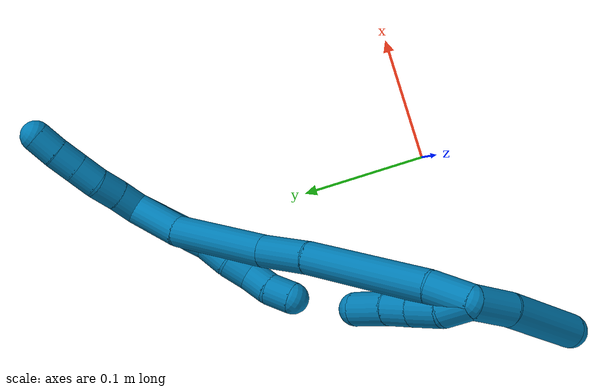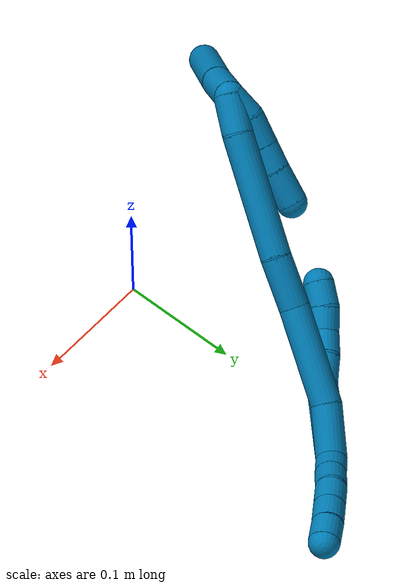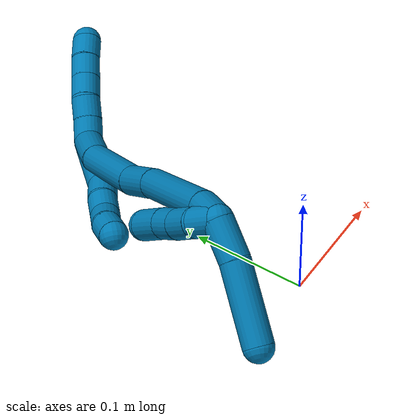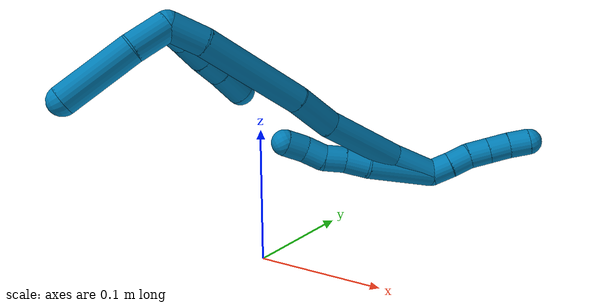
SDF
<sdf version="1.7">
 <world name="default">
  <model name="photoneo_s_sensor">
   <static>1</static>
   <pose>0 0 2 1.57079 1.57079 3.14159</pose>
   <link name="link">
    <inertial><mass>0.1</mass></inertial>
    <sensor name="sensor" type="depth">
     <update_rate>30</update_rate>
     <camera>
      <horizontal_fov>1.22</horizontal_fov>
      <image><width>1920</width><height>1200</height><format>B8G8R8</format></image>
      <clip><near>0.1</near><far>4</far></clip>
      <depth_camera><output>points</output></depth_camera>
     </camera>
     <plugin name="camera_plugin" filename="libgazebo_ros_depth_camera.so">
      <baseline>0.2</baseline>
      <alwaysOn>1</alwaysOn>
      <updateRate>0.0</updateRate>
      <cameraName>camera_ir</cameraName>
      <imageTopicName>/camera/color/image_raw</imageTopicName>
      <cameraInfoTopicName>/camera/color/camera_info</cameraInfoTopicName>
      <depthImageTopicName>/camera/depth/image_raw</depthImageTopicName>
      <depthImageCameraInfoTopicName>/camera/depth/camera_info</depthImageCameraInfoTopicName>
      <pointCloudTopicName>/camera/depth/points</pointCloudTopicName>
      <frameName>fr_optical</frameName>
      <pointCloudCutoff>0.1</pointCloudCutoff>
      <pointCloudCutoffMax>2.0</pointCloudCutoffMax>
      <distortionK1>0</distortionK1>
      <distortionK2>0</distortionK2>
      <distortionK3>0</distortionK3>
      <distortionT1>0</distortionT1>
      <distortionT2>0</distortionT2>
      <CxPrime>0</CxPrime>
      <Cx>0</Cx>
      <Cy>0</Cy>
      <focalLength>0</focalLength>
      <hackBaseline>0</hackBaseline>
     </plugin>
    </sensor>
   </link>
  </model>
  <model name="bin">
   <static>1</static>
   <link name="bottom">
    <collision name="collision-bottom">
     <pose>0 0 -0.01 0 -0 0</pose>
     <geometry><box><size>0.8 0.6 0.02</size></box></geometry>
     <surface>
      <friction><ode><mu>100</mu><mu2>100</mu2></ode></friction>
      <contact><collide_bitmask>65535</collide_bitmask></contact>
     </surface>
    </collision>
   </link>
   <link name="west_wall">
    <collision name="collision-west_wall">
     <pose>-0.41 0 0.1 0 -0 0</pose>
     <geometry><box><size>0.02 0.6 0.2</size></box></geometry>
     <surface>
      <friction><ode><mu>100</mu><mu2>100</mu2></ode></friction>
      <contact><collide_bitmask>65535</collide_bitmask></contact>
     </surface>
    </collision>
   </link>
   <link name="east_wall">
    <collision name="collision-east_wall">
     <pose>0.41 0 0.1 0 -0 0</pose>
     <geometry><box><size>0.02 0.6 0.2</size></box></geometry>
     <surface>
      <friction><ode><mu>100</mu><mu2>100</mu2></ode></friction>
      <contact><collide_bitmask>65535</collide_bitmask></contact>
     </surface>
    </collision>
   </link>
   <link name="south_wall">
    <collision name="collision-south_wall">
     <pose>0 -0.31 0.1 0 -0 0</pose>
     <geometry><box><size>0.8 0.02 0.2</size></box></geometry>
     <surface>
      <friction><ode><mu>100</mu><mu2>100</mu2></ode></friction>
      <contact><collide_bitmask>65535</collide_bitmask></contact>
     </surface>
    </collision>
   </link>
   <link name="north_wall">
    <collision name="collision-north_wall">
     <pose>0 0.31 0.1 0 -0 0</pose>
     <geometry><box><size>0.8 0.02 0.2</size></box></geometry>
     <surface>
      <friction><ode><mu>100</mu><mu2>100</mu2></ode></friction>
      <contact><collide_bitmask>65535</collide_bitmask></contact>
     </surface>
    </collision>
   </link>
  </model>
  <model name="9">
   <static>0</static>
   <link name="9">
    <collision name="collision-cylinder-e_1_2_8">
     <pose>-0.009072 -0.016664 0.026499 0.561375 -0.282074 -0.08182</pose>
     <geometry><cylinder><radius>0.0125</radius><length>0.065183</length></cylinder></geometry>
     <surface>
      <friction><ode><mu>1.16</mu><mu2>1.16</mu2><slip1>0</slip1><slip2>0</slip2></ode></friction>
      <contact><ode><kp>1e+06</kp><kd>1</kd><max_vel>0</max_vel><min_depth>0.001</min_depth></ode></contact>
     </surface>
    </collision>
    <visual name="visual-cylinder-e_1_2_8">
     <pose>-0.009072 -0.016664 0.026499 0.561375 -0.282074 -0.08182</pose>
     <geometry><cylinder><radius>0.0125</radius><length>0.065183</length></cylinder></geometry>
     <material><ambient>0 0.490196 0.709804 1</ambient></material>
    </visual>
    <collision name="collision-cylinder-e_2_8_9">
     <pose>-0.019577 -0.040743 0.061704 0.705414 -0.124715 -0.045959</pose>
     <geometry><cylinder><radius>0.0125</radius><length>0.023049</length></cylinder></geometry>
     <surface>
      <friction><ode><mu>1.16</mu><mu2>1.16</mu2><slip1>0</slip1><slip2>0</slip2></ode></friction>
      <contact><ode><kp>1e+06</kp><kd>1</kd><max_vel>0</max_vel><min_depth>0.001</min_depth></ode></contact>
     </surface>
    </collision>
    <visual name="visual-cylinder-e_2_8_9">
     <pose>-0.019577 -0.040743 0.061704 0.705414 -0.124715 -0.045959</pose>
     <geometry><cylinder><radius>0.0125</radius><length>0.023049</length></cylinder></geometry>
     <material><ambient>0 0.490196 0.709804 1</ambient></material>
    </visual>
    <collision name="collision-cylinder-e_3_9_10">
     <pose>-0.022895 -0.053289 0.079096 0.533686 -0.184676 -0.050617</pose>
     <geometry><cylinder><radius>0.0125</radius><length>0.020527</length></cylinder></geometry>
     <surface>
      <friction><ode><mu>1.16</mu><mu2>1.16</mu2><slip1>0</slip1><slip2>0</slip2></ode></friction>
      <contact><ode><kp>1e+06</kp><kd>1</kd><max_vel>0</max_vel><min_depth>0.001</min_depth></ode></contact>
     </surface>
    </collision>
    <visual name="visual-cylinder-e_3_9_10">
     <pose>-0.022895 -0.053289 0.079096 0.533686 -0.184676 -0.050617</pose>
     <geometry><cylinder><radius>0.0125</radius><length>0.020527</length></cylinder></geometry>
     <material><ambient>0 0.490196 0.709804 1</ambient></material>
    </visual>
    <collision name="collision-cylinder-e_4_10_11">
     <pose>-0.027415 -0.066056 0.094124 0.877639 -0.259523 -0.12234</pose>
     <geometry><cylinder><radius>0.0125</radius><length>0.020536</length></cylinder></geometry>
     <surface>
      <friction><ode><mu>1.16</mu><mu2>1.16</mu2><slip1>0</slip1><slip2>0</slip2></ode></friction>
      <contact><ode><kp>1e+06</kp><kd>1</kd><max_vel>0</max_vel><min_depth>0.001</min_depth></ode></contact>
     </surface>
    </collision>
    <visual name="visual-cylinder-e_4_10_11">
     <pose>-0.027415 -0.066056 0.094124 0.877639 -0.259523 -0.12234</pose>
     <geometry><cylinder><radius>0.0125</radius><length>0.020536</length></cylinder></geometry>
     <material><ambient>0 0.490196 0.709804 1</ambient></material>
    </visual>
    <collision name="collision-cylinder-e_5_11_6">
     <pose>-0.034569 -0.079887 0.107418 0.727951 -0.451697 -0.174615</pose>
     <geometry><cylinder><radius>0.0125</radius><length>0.020704</length></cylinder></geometry>
     <surface>
      <friction><ode><mu>1.16</mu><mu2>1.16</mu2><slip1>0</slip1><slip2>0</slip2></ode></friction>
      <contact><ode><kp>1e+06</kp><kd>1</kd><max_vel>0</max_vel><min_depth>0.001</min_depth></ode></contact>
     </surface>
    </collision>
    <visual name="visual-cylinder-e_5_11_6">
     <pose>-0.034569 -0.079887 0.107418 0.727951 -0.451697 -0.174615</pose>
     <geometry><cylinder><radius>0.0125</radius><length>0.020704</length></cylinder></geometry>
     <material><ambient>0 0.490196 0.709804 1</ambient></material>
    </visual>
    <collision name="collision-cylinder-e_1_2_12">
     <pose>-0.000994 0.000812 -0.009917 -3.05988 -0.099531 1.76705</pose>
     <geometry><cylinder><radius>0.0125</radius><length>0.02</length></cylinder></geometry>
     <surface>
      <friction><ode><mu>1.16</mu><mu2>1.16</mu2><slip1>0</slip1><slip2>0</slip2></ode></friction>
      <contact><ode><kp>1e+06</kp><kd>1</kd><max_vel>0</max_vel><min_depth>0.001</min_depth></ode></contact>
     </surface>
    </collision>
    <visual name="visual-cylinder-e_1_2_12">
     <pose>-0.000994 0.000812 -0.009917 -3.05988 -0.099531 1.76705</pose>
     <geometry><cylinder><radius>0.0125</radius><length>0.02</length></cylinder></geometry>
     <material><ambient>0 0.490196 0.709804 1</ambient></material>
    </visual>
    <collision name="collision-cylinder-e_2_12_13">
     <pose>-0.00264 0.001864 -0.02981 -3.11755 -0.065272 2.43601</pose>
     <geometry><cylinder><radius>0.0125</radius><length>0.02</length></cylinder></geometry>
     <surface>
      <friction><ode><mu>1.16</mu><mu2>1.16</mu2><slip1>0</slip1><slip2>0</slip2></ode></friction>
      <contact><ode><kp>1e+06</kp><kd>1</kd><max_vel>0</max_vel><min_depth>0.001</min_depth></ode></contact>
     </surface>
    </collision>
    <visual name="visual-cylinder-e_2_12_13">
     <pose>-0.00264 0.001864 -0.02981 -3.11755 -0.065272 2.43601</pose>
     <geometry><cylinder><radius>0.0125</radius><length>0.02</length></cylinder></geometry>
     <material><ambient>0 0.490196 0.709804 1</ambient></material>
    </visual>
    <collision name="collision-cylinder-e_3_13_14">
     <pose>-0.004016 0.004291 -0.049517 -2.92053 -0.072498 0.631635</pose>
     <geometry><cylinder><radius>0.0125</radius><length>0.02</length></cylinder></geometry>
     <surface>
      <friction><ode><mu>1.16</mu><mu2>1.16</mu2><slip1>0</slip1><slip2>0</slip2></ode></friction>
      <contact><ode><kp>1e+06</kp><kd>1</kd><max_vel>0</max_vel><min_depth>0.001</min_depth></ode></contact>
     </surface>
    </collision>
    <visual name="visual-cylinder-e_3_13_14">
     <pose>-0.004016 0.004291 -0.049517 -2.92053 -0.072498 0.631635</pose>
     <geometry><cylinder><radius>0.0125</radius><length>0.02</length></cylinder></geometry>
     <material><ambient>0 0.490196 0.709804 1</ambient></material>
    </visual>
    <collision name="collision-cylinder-e_4_14_15">
     <pose>-0.00547 0.008648 -0.068983 -2.92231 -0.073001 0.640584</pose>
     <geometry><cylinder><radius>0.0125</radius><length>0.02</length></cylinder></geometry>
     <surface>
      <friction><ode><mu>1.16</mu><mu2>1.16</mu2><slip1>0</slip1><slip2>0</slip2></ode></friction>
      <contact><ode><kp>1e+06</kp><kd>1</kd><max_vel>0</max_vel><min_depth>0.001</min_depth></ode></contact>
     </surface>
    </collision>
    <visual name="visual-cylinder-e_4_14_15">
     <pose>-0.00547 0.008648 -0.068983 -2.92231 -0.073001 0.640584</pose>
     <geometry><cylinder><radius>0.0125</radius><length>0.02</length></cylinder></geometry>
     <material><ambient>0 0.490196 0.709804 1</ambient></material>
    </visual>
    <collision name="collision-cylinder-e_5_15_5">
     <pose>-0.007253 0.013732 -0.088225 -2.84412 -0.105579 0.678031</pose>
     <geometry><cylinder><radius>0.0125</radius><length>0.02</length></cylinder></geometry>
     <surface>
      <friction><ode><mu>1.16</mu><mu2>1.16</mu2><slip1>0</slip1><slip2>0</slip2></ode></friction>
      <contact><ode><kp>1e+06</kp><kd>1</kd><max_vel>0</max_vel><min_depth>0.001</min_depth></ode></contact>
     </surface>
    </collision>
    <visual name="visual-cylinder-e_5_15_5">
     <pose>-0.007253 0.013732 -0.088225 -2.84412 -0.105579 0.678031</pose>
     <geometry><cylinder><radius>0.0125</radius><length>0.02</length></cylinder></geometry>
     <material><ambient>0 0.490196 0.709804 1</ambient></material>
    </visual>
    <collision name="collision-cylinder-e_1_2_16">
     <pose>-0.007719 -0.0151 0.013928 0.825753 -0.359418 -0.158827</pose>
     <geometry><cylinder><radius>0.0125</radius><length>0.043891</length></cylinder></geometry>
     <surface>
      <friction><ode><mu>1.16</mu><mu2>1.16</mu2><slip1>0</slip1><slip2>0</slip2></ode></friction>
      <contact><ode><kp>1e+06</kp><kd>1</kd><max_vel>0</max_vel><min_depth>0.001</min_depth></ode></contact>
     </surface>
    </collision>
    <visual name="visual-cylinder-e_1_2_16">
     <pose>-0.007719 -0.0151 0.013928 0.825753 -0.359418 -0.158827</pose>
     <geometry><cylinder><radius>0.0125</radius><length>0.043891</length></cylinder></geometry>
     <material><ambient>0 0.490196 0.709804 1</ambient></material>
    </visual>
    <collision name="collision-cylinder-e_2_16_17">
     <pose>-0.038402 -0.054938 0.049844 0.844189 -0.606586 -0.279253</pose>
     <geometry><cylinder><radius>0.0125</radius><length>0.080567</length></cylinder></geometry>
     <surface>
      <friction><ode><mu>1.16</mu><mu2>1.16</mu2><slip1>0</slip1><slip2>0</slip2></ode></friction>
      <contact><ode><kp>1e+06</kp><kd>1</kd><max_vel>0</max_vel><min_depth>0.001</min_depth></ode></contact>
     </surface>
    </collision>
    <visual name="visual-cylinder-e_2_16_17">
     <pose>-0.038402 -0.054938 0.049844 0.844189 -0.606586 -0.279253</pose>
     <geometry><cylinder><radius>0.0125</radius><length>0.080567</length></cylinder></geometry>
     <material><ambient>0 0.490196 0.709804 1</ambient></material>
    </visual>
    <collision name="collision-cylinder-e_3_17_18">
     <pose>-0.074871 -0.093665 0.080351 1.02376 -0.689537 -0.398175</pose>
     <geometry><cylinder><radius>0.0125</radius><length>0.042458</length></cylinder></geometry>
     <surface>
      <friction><ode><mu>1.16</mu><mu2>1.16</mu2><slip1>0</slip1><slip2>0</slip2></ode></friction>
      <contact><ode><kp>1e+06</kp><kd>1</kd><max_vel>0</max_vel><min_depth>0.001</min_depth></ode></contact>
     </surface>
    </collision>
    <visual name="visual-cylinder-e_3_17_18">
     <pose>-0.074871 -0.093665 0.080351 1.02376 -0.689537 -0.398175</pose>
     <geometry><cylinder><radius>0.0125</radius><length>0.042458</length></cylinder></geometry>
     <material><ambient>0 0.490196 0.709804 1</ambient></material>
    </visual>
    <collision name="collision-cylinder-e_4_18_19">
     <pose>-0.11738 -0.140666 0.113788 0.924235 -0.611545 -0.311912</pose>
     <geometry><cylinder><radius>0.0125</radius><length>0.101033</length></cylinder></geometry>
     <surface>
      <friction><ode><mu>1.16</mu><mu2>1.16</mu2><slip1>0</slip1><slip2>0</slip2></ode></friction>
      <contact><ode><kp>1e+06</kp><kd>1</kd><max_vel>0</max_vel><min_depth>0.001</min_depth></ode></contact>
     </surface>
    </collision>
    <visual name="visual-cylinder-e_4_18_19">
     <pose>-0.11738 -0.140666 0.113788 0.924235 -0.611545 -0.311912</pose>
     <geometry><cylinder><radius>0.0125</radius><length>0.101033</length></cylinder></geometry>
     <material><ambient>0 0.490196 0.709804 1</ambient></material>
    </visual>
    <collision name="collision-cylinder-e_5_19_1">
     <pose>-0.153929 -0.183874 0.148501 0.805443 -0.490258 -0.212337</pose>
     <geometry><cylinder><radius>0.0125</radius><length>0.032052</length></cylinder></geometry>
     <surface>
      <friction><ode><mu>1.16</mu><mu2>1.16</mu2><slip1>0</slip1><slip2>0</slip2></ode></friction>
      <contact><ode><kp>1e+06</kp><kd>1</kd><max_vel>0</max_vel><min_depth>0.001</min_depth></ode></contact>
     </surface>
    </collision>
    <visual name="visual-cylinder-e_5_19_1">
     <pose>-0.153929 -0.183874 0.148501 0.805443 -0.490258 -0.212337</pose>
     <geometry><cylinder><radius>0.0125</radius><length>0.032052</length></cylinder></geometry>
     <material><ambient>0 0.490196 0.709804 1</ambient></material>
    </visual>
    <collision name="collision-cylinder-e_1_1_20">
     <pose>-0.151093 -0.189463 0.155545 -2.10913 1.09373 -1.64086</pose>
     <geometry><cylinder><radius>0.0125</radius><length>0.023373</length></cylinder></geometry>
     <surface>
      <friction><ode><mu>1.16</mu><mu2>1.16</mu2><slip1>0</slip1><slip2>0</slip2></ode></friction>
      <contact><ode><kp>1e+06</kp><kd>1</kd><max_vel>0</max_vel><min_depth>0.001</min_depth></ode></contact>
     </surface>
    </collision>
    <visual name="visual-cylinder-e_1_1_20">
     <pose>-0.151093 -0.189463 0.155545 -2.10913 1.09373 -1.64086</pose>
     <geometry><cylinder><radius>0.0125</radius><length>0.023373</length></cylinder></geometry>
     <material><ambient>0 0.490196 0.709804 1</ambient></material>
    </visual>
    <collision name="collision-cylinder-e_2_20_21">
     <pose>-0.131537 -0.176801 0.149204 -1.99004 0.805222 -1.16123</pose>
     <geometry><cylinder><radius>0.0125</radius><length>0.02545</length></cylinder></geometry>
     <surface>
      <friction><ode><mu>1.16</mu><mu2>1.16</mu2><slip1>0</slip1><slip2>0</slip2></ode></friction>
      <contact><ode><kp>1e+06</kp><kd>1</kd><max_vel>0</max_vel><min_depth>0.001</min_depth></ode></contact>
     </surface>
    </collision>
    <visual name="visual-cylinder-e_2_20_21">
     <pose>-0.131537 -0.176801 0.149204 -1.99004 0.805222 -1.16123</pose>
     <geometry><cylinder><radius>0.0125</radius><length>0.02545</length></cylinder></geometry>
     <material><ambient>0 0.490196 0.709804 1</ambient></material>
    </visual>
    <collision name="collision-cylinder-e_3_21_22">
     <pose>-0.114696 -0.162225 0.141843 -2.09513 0.794106 -1.25711</pose>
     <geometry><cylinder><radius>0.0125</radius><length>0.021497</length></cylinder></geometry>
     <surface>
      <friction><ode><mu>1.16</mu><mu2>1.16</mu2><slip1>0</slip1><slip2>0</slip2></ode></friction>
      <contact><ode><kp>1e+06</kp><kd>1</kd><max_vel>0</max_vel><min_depth>0.001</min_depth></ode></contact>
     </surface>
    </collision>
    <visual name="visual-cylinder-e_3_21_22">
     <pose>-0.114696 -0.162225 0.141843 -2.09513 0.794106 -1.25711</pose>
     <geometry><cylinder><radius>0.0125</radius><length>0.021497</length></cylinder></geometry>
     <material><ambient>0 0.490196 0.709804 1</ambient></material>
    </visual>
    <collision name="collision-cylinder-e_4_22_4">
     <pose>-0.09583 -0.146924 0.133864 -2.01768 0.855217 -1.25297</pose>
     <geometry><cylinder><radius>0.0125</radius><length>0.02968</length></cylinder></geometry>
     <surface>
      <friction><ode><mu>1.16</mu><mu2>1.16</mu2><slip1>0</slip1><slip2>0</slip2></ode></friction>
      <contact><ode><kp>1e+06</kp><kd>1</kd><max_vel>0</max_vel><min_depth>0.001</min_depth></ode></contact>
     </surface>
    </collision>
    <visual name="visual-cylinder-e_4_22_4">
     <pose>-0.09583 -0.146924 0.133864 -2.01768 0.855217 -1.25297</pose>
     <geometry><cylinder><radius>0.0125</radius><length>0.02968</length></cylinder></geometry>
     <material><ambient>0 0.490196 0.709804 1</ambient></material>
    </visual>
    <collision name="collision-cylinder-e_1_1_23">
     <pose>-0.164217 -0.191125 0.174682 -0.177811 -0.163256 0.014585</pose>
     <geometry><cylinder><radius>0.0125</radius><length>0.033746</length></cylinder></geometry>
     <surface>
      <friction><ode><mu>1.16</mu><mu2>1.16</mu2><slip1>0</slip1><slip2>0</slip2></ode></friction>
      <contact><ode><kp>1e+06</kp><kd>1</kd><max_vel>0</max_vel><min_depth>0.001</min_depth></ode></contact>
     </surface>
    </collision>
    <visual name="visual-cylinder-e_1_1_23">
     <pose>-0.164217 -0.191125 0.174682 -0.177811 -0.163256 0.014585</pose>
     <geometry><cylinder><radius>0.0125</radius><length>0.033746</length></cylinder></geometry>
     <material><ambient>0 0.490196 0.709804 1</ambient></material>
    </visual>
    <collision name="collision-cylinder-e_2_23_3">
     <pose>-0.167666 -0.181416 0.223489 -0.20571 -0.021322 0.002201</pose>
     <geometry><cylinder><radius>0.0125</radius><length>0.066254</length></cylinder></geometry>
     <surface>
      <friction><ode><mu>1.16</mu><mu2>1.16</mu2><slip1>0</slip1><slip2>0</slip2></ode></friction>
      <contact><ode><kp>1e+06</kp><kd>1</kd><max_vel>0</max_vel><min_depth>0.001</min_depth></ode></contact>
     </surface>
    </collision>
    <visual name="visual-cylinder-e_2_23_3">
     <pose>-0.167666 -0.181416 0.223489 -0.20571 -0.021322 0.002201</pose>
     <geometry><cylinder><radius>0.0125</radius><length>0.066254</length></cylinder></geometry>
     <material><ambient>0 0.490196 0.709804 1</ambient></material>
    </visual>
    <collision name="collision-sphere-3">
     <pose>-0.168372 -0.174651 0.255911 0 -0 0</pose>
     <geometry><sphere><radius>0.0125</radius></sphere></geometry>
     <surface>
      <friction><ode><mu>1.16</mu><mu2>1.16</mu2><slip1>0</slip1><slip2>0</slip2></ode></friction>
      <contact><ode><kp>1e+06</kp><kd>1</kd><max_vel>0</max_vel><min_depth>0.001</min_depth></ode></contact>
     </surface>
    </collision>
    <visual name="visual-sphere-3">
     <pose>-0.168372 -0.174651 0.255911 0 -0 0</pose>
     <geometry><sphere><radius>0.0125</radius></sphere></geometry>
     <material><ambient>0 0.490196 0.709804 1</ambient></material>
    </visual>
    <collision name="collision-sphere-23">
     <pose>-0.16696 -0.188181 0.191068 0 -0 0</pose>
     <geometry><sphere><radius>0.0125</radius></sphere></geometry>
     <surface>
      <friction><ode><mu>1.16</mu><mu2>1.16</mu2><slip1>0</slip1><slip2>0</slip2></ode></friction>
      <contact><ode><kp>1e+06</kp><kd>1</kd><max_vel>0</max_vel><min_depth>0.001</min_depth></ode></contact>
     </surface>
    </collision>
    <visual name="visual-sphere-23">
     <pose>-0.16696 -0.188181 0.191068 0 -0 0</pose>
     <geometry><sphere><radius>0.0125</radius></sphere></geometry>
     <material><ambient>0 0.490196 0.709804 1</ambient></material>
    </visual>
    <collision name="collision-sphere-4">
     <pose>-0.08463 -0.138144 0.129656 0 -0 0</pose>
     <geometry><sphere><radius>0.0125</radius></sphere></geometry>
     <surface>
      <friction><ode><mu>1.16</mu><mu2>1.16</mu2><slip1>0</slip1><slip2>0</slip2></ode></friction>
      <contact><ode><kp>1e+06</kp><kd>1</kd><max_vel>0</max_vel><min_depth>0.001</min_depth></ode></contact>
     </surface>
    </collision>
    <visual name="visual-sphere-4">
     <pose>-0.08463 -0.138144 0.129656 0 -0 0</pose>
     <geometry><sphere><radius>0.0125</radius></sphere></geometry>
     <material><ambient>0 0.490196 0.709804 1</ambient></material>
    </visual>
    <collision name="collision-sphere-22">
     <pose>-0.10703 -0.155704 0.138071 0 -0 0</pose>
     <geometry><sphere><radius>0.0125</radius></sphere></geometry>
     <surface>
      <friction><ode><mu>1.16</mu><mu2>1.16</mu2><slip1>0</slip1><slip2>0</slip2></ode></friction>
      <contact><ode><kp>1e+06</kp><kd>1</kd><max_vel>0</max_vel><min_depth>0.001</min_depth></ode></contact>
     </surface>
    </collision>
    <visual name="visual-sphere-22">
     <pose>-0.10703 -0.155704 0.138071 0 -0 0</pose>
     <geometry><sphere><radius>0.0125</radius></sphere></geometry>
     <material><ambient>0 0.490196 0.709804 1</ambient></material>
    </visual>
    <collision name="collision-sphere-21">
     <pose>-0.122362 -0.168747 0.145614 0 -0 0</pose>
     <geometry><sphere><radius>0.0125</radius></sphere></geometry>
     <surface>
      <friction><ode><mu>1.16</mu><mu2>1.16</mu2><slip1>0</slip1><slip2>0</slip2></ode></friction>
      <contact><ode><kp>1e+06</kp><kd>1</kd><max_vel>0</max_vel><min_depth>0.001</min_depth></ode></contact>
     </surface>
    </collision>
    <visual name="visual-sphere-21">
     <pose>-0.122362 -0.168747 0.145614 0 -0 0</pose>
     <geometry><sphere><radius>0.0125</radius></sphere></geometry>
     <material><ambient>0 0.490196 0.709804 1</ambient></material>
    </visual>
    <collision name="collision-sphere-20">
     <pose>-0.140711 -0.184856 0.152793 0 -0 0</pose>
     <geometry><sphere><radius>0.0125</radius></sphere></geometry>
     <surface>
      <friction><ode><mu>1.16</mu><mu2>1.16</mu2><slip1>0</slip1><slip2>0</slip2></ode></friction>
      <contact><ode><kp>1e+06</kp><kd>1</kd><max_vel>0</max_vel><min_depth>0.001</min_depth></ode></contact>
     </surface>
    </collision>
    <visual name="visual-sphere-20">
     <pose>-0.140711 -0.184856 0.152793 0 -0 0</pose>
     <geometry><sphere><radius>0.0125</radius></sphere></geometry>
     <material><ambient>0 0.490196 0.709804 1</ambient></material>
    </visual>
    <collision name="collision-sphere-6">
     <pose>-0.039087 -0.086084 0.114371 0 -0 0</pose>
     <geometry><sphere><radius>0.0125</radius></sphere></geometry>
     <surface>
      <friction><ode><mu>1.16</mu><mu2>1.16</mu2><slip1>0</slip1><slip2>0</slip2></ode></friction>
      <contact><ode><kp>1e+06</kp><kd>1</kd><max_vel>0</max_vel><min_depth>0.001</min_depth></ode></contact>
     </surface>
    </collision>
    <visual name="visual-sphere-6">
     <pose>-0.039087 -0.086084 0.114371 0 -0 0</pose>
     <geometry><sphere><radius>0.0125</radius></sphere></geometry>
     <material><ambient>0 0.490196 0.709804 1</ambient></material>
    </visual>
    <collision name="collision-sphere-11">
     <pose>-0.03005 -0.07369 0.100465 0 -0 0</pose>
     <geometry><sphere><radius>0.0125</radius></sphere></geometry>
     <surface>
      <friction><ode><mu>1.16</mu><mu2>1.16</mu2><slip1>0</slip1><slip2>0</slip2></ode></friction>
      <contact><ode><kp>1e+06</kp><kd>1</kd><max_vel>0</max_vel><min_depth>0.001</min_depth></ode></contact>
     </surface>
    </collision>
    <visual name="visual-sphere-11">
     <pose>-0.03005 -0.07369 0.100465 0 -0 0</pose>
     <geometry><sphere><radius>0.0125</radius></sphere></geometry>
     <material><ambient>0 0.490196 0.709804 1</ambient></material>
    </visual>
    <collision name="collision-sphere-10">
     <pose>-0.02478 -0.058421 0.087782 0 -0 0</pose>
     <geometry><sphere><radius>0.0125</radius></sphere></geometry>
     <surface>
      <friction><ode><mu>1.16</mu><mu2>1.16</mu2><slip1>0</slip1><slip2>0</slip2></ode></friction>
      <contact><ode><kp>1e+06</kp><kd>1</kd><max_vel>0</max_vel><min_depth>0.001</min_depth></ode></contact>
     </surface>
    </collision>
    <visual name="visual-sphere-10">
     <pose>-0.02478 -0.058421 0.087782 0 -0 0</pose>
     <geometry><sphere><radius>0.0125</radius></sphere></geometry>
     <material><ambient>0 0.490196 0.709804 1</ambient></material>
    </visual>
    <collision name="collision-sphere-9">
     <pose>-0.021011 -0.048157 0.07041 0 -0 0</pose>
     <geometry><sphere><radius>0.0125</radius></sphere></geometry>
     <surface>
      <friction><ode><mu>1.16</mu><mu2>1.16</mu2><slip1>0</slip1><slip2>0</slip2></ode></friction>
      <contact><ode><kp>1e+06</kp><kd>1</kd><max_vel>0</max_vel><min_depth>0.001</min_depth></ode></contact>
     </surface>
    </collision>
    <visual name="visual-sphere-9">
     <pose>-0.021011 -0.048157 0.07041 0 -0 0</pose>
     <geometry><sphere><radius>0.0125</radius></sphere></geometry>
     <material><ambient>0 0.490196 0.709804 1</ambient></material>
    </visual>
    <collision name="collision-sphere-2">
     <geometry><sphere><radius>0.0125</radius></sphere></geometry>
     <surface>
      <friction><ode><mu>1.16</mu><mu2>1.16</mu2><slip1>0</slip1><slip2>0</slip2></ode></friction>
      <contact><ode><kp>1e+06</kp><kd>1</kd><max_vel>0</max_vel><min_depth>0.001</min_depth></ode></contact>
     </surface>
    </collision>
    <visual name="visual-sphere-2">
     <geometry><sphere><radius>0.0125</radius></sphere></geometry>
     <material><ambient>0 0.490196 0.709804 1</ambient></material>
    </visual>
    <collision name="collision-sphere-19">
     <pose>-0.146383 -0.173679 0.138706 0 -0 0</pose>
     <geometry><sphere><radius>0.0125</radius></sphere></geometry>
     <surface>
      <friction><ode><mu>1.16</mu><mu2>1.16</mu2><slip1>0</slip1><slip2>0</slip2></ode></friction>
      <contact><ode><kp>1e+06</kp><kd>1</kd><max_vel>0</max_vel><min_depth>0.001</min_depth></ode></contact>
     </surface>
    </collision>
    <visual name="visual-sphere-19">
     <pose>-0.146383 -0.173679 0.138706 0 -0 0</pose>
     <geometry><sphere><radius>0.0125</radius></sphere></geometry>
     <material><ambient>0 0.490196 0.709804 1</ambient></material>
    </visual>
    <collision name="collision-sphere-8">
     <pose>-0.018144 -0.033329 0.052998 0 -0 0</pose>
     <geometry><sphere><radius>0.0125</radius></sphere></geometry>
     <surface>
      <friction><ode><mu>1.16</mu><mu2>1.16</mu2><slip1>0</slip1><slip2>0</slip2></ode></friction>
      <contact><ode><kp>1e+06</kp><kd>1</kd><max_vel>0</max_vel><min_depth>0.001</min_depth></ode></contact>
     </surface>
    </collision>
    <visual name="visual-sphere-8">
     <pose>-0.018144 -0.033329 0.052998 0 -0 0</pose>
     <geometry><sphere><radius>0.0125</radius></sphere></geometry>
     <material><ambient>0 0.490196 0.709804 1</ambient></material>
    </visual>
    <collision name="collision-sphere-12">
     <pose>-0.001987 0.001624 -0.019835 0 -0 0</pose>
     <geometry><sphere><radius>0.0125</radius></sphere></geometry>
     <surface>
      <friction><ode><mu>1.16</mu><mu2>1.16</mu2><slip1>0</slip1><slip2>0</slip2></ode></friction>
      <contact><ode><kp>1e+06</kp><kd>1</kd><max_vel>0</max_vel><min_depth>0.001</min_depth></ode></contact>
     </surface>
    </collision>
    <visual name="visual-sphere-12">
     <pose>-0.001987 0.001624 -0.019835 0 -0 0</pose>
     <geometry><sphere><radius>0.0125</radius></sphere></geometry>
     <material><ambient>0 0.490196 0.709804 1</ambient></material>
    </visual>
    <collision name="collision-sphere-13">
     <pose>-0.003292 0.002104 -0.039786 0 -0 0</pose>
     <geometry><sphere><radius>0.0125</radius></sphere></geometry>
     <surface>
      <friction><ode><mu>1.16</mu><mu2>1.16</mu2><slip1>0</slip1><slip2>0</slip2></ode></friction>
      <contact><ode><kp>1e+06</kp><kd>1</kd><max_vel>0</max_vel><min_depth>0.001</min_depth></ode></contact>
     </surface>
    </collision>
    <visual name="visual-sphere-13">
     <pose>-0.003292 0.002104 -0.039786 0 -0 0</pose>
     <geometry><sphere><radius>0.0125</radius></sphere></geometry>
     <material><ambient>0 0.490196 0.709804 1</ambient></material>
    </visual>
    <collision name="collision-sphere-14">
     <pose>-0.004741 0.006478 -0.059248 0 -0 0</pose>
     <geometry><sphere><radius>0.0125</radius></sphere></geometry>
     <surface>
      <friction><ode><mu>1.16</mu><mu2>1.16</mu2><slip1>0</slip1><slip2>0</slip2></ode></friction>
      <contact><ode><kp>1e+06</kp><kd>1</kd><max_vel>0</max_vel><min_depth>0.001</min_depth></ode></contact>
     </surface>
    </collision>
    <visual name="visual-sphere-14">
     <pose>-0.004741 0.006478 -0.059248 0 -0 0</pose>
     <geometry><sphere><radius>0.0125</radius></sphere></geometry>
     <material><ambient>0 0.490196 0.709804 1</ambient></material>
    </visual>
    <collision name="collision-sphere-15">
     <pose>-0.006199 0.010817 -0.078717 0 -0 0</pose>
     <geometry><sphere><radius>0.0125</radius></sphere></geometry>
     <surface>
      <friction><ode><mu>1.16</mu><mu2>1.16</mu2><slip1>0</slip1><slip2>0</slip2></ode></friction>
      <contact><ode><kp>1e+06</kp><kd>1</kd><max_vel>0</max_vel><min_depth>0.001</min_depth></ode></contact>
     </surface>
    </collision>
    <visual name="visual-sphere-15">
     <pose>-0.006199 0.010817 -0.078717 0 -0 0</pose>
     <geometry><sphere><radius>0.0125</radius></sphere></geometry>
     <material><ambient>0 0.490196 0.709804 1</ambient></material>
    </visual>
    <collision name="collision-sphere-5">
     <pose>-0.008307 0.016647 -0.097732 0 -0 0</pose>
     <geometry><sphere><radius>0.0125</radius></sphere></geometry>
     <surface>
      <friction><ode><mu>1.16</mu><mu2>1.16</mu2><slip1>0</slip1><slip2>0</slip2></ode></friction>
      <contact><ode><kp>1e+06</kp><kd>1</kd><max_vel>0</max_vel><min_depth>0.001</min_depth></ode></contact>
     </surface>
    </collision>
    <visual name="visual-sphere-5">
     <pose>-0.008307 0.016647 -0.097732 0 -0 0</pose>
     <geometry><sphere><radius>0.0125</radius></sphere></geometry>
     <material><ambient>0 0.490196 0.709804 1</ambient></material>
    </visual>
    <collision name="collision-sphere-16">
     <pose>-0.015438 -0.030201 0.027857 0 -0 0</pose>
     <geometry><sphere><radius>0.0125</radius></sphere></geometry>
     <surface>
      <friction><ode><mu>1.16</mu><mu2>1.16</mu2><slip1>0</slip1><slip2>0</slip2></ode></friction>
      <contact><ode><kp>1e+06</kp><kd>1</kd><max_vel>0</max_vel><min_depth>0.001</min_depth></ode></contact>
     </surface>
    </collision>
    <visual name="visual-sphere-16">
     <pose>-0.015438 -0.030201 0.027857 0 -0 0</pose>
     <geometry><sphere><radius>0.0125</radius></sphere></geometry>
     <material><ambient>0 0.490196 0.709804 1</ambient></material>
    </visual>
    <collision name="collision-sphere-17">
     <pose>-0.061366 -0.079676 0.071831 0 -0 0</pose>
     <geometry><sphere><radius>0.0125</radius></sphere></geometry>
     <surface>
      <friction><ode><mu>1.16</mu><mu2>1.16</mu2><slip1>0</slip1><slip2>0</slip2></ode></friction>
      <contact><ode><kp>1e+06</kp><kd>1</kd><max_vel>0</max_vel><min_depth>0.001</min_depth></ode></contact>
     </surface>
    </collision>
    <visual name="visual-sphere-17">
     <pose>-0.061366 -0.079676 0.071831 0 -0 0</pose>
     <geometry><sphere><radius>0.0125</radius></sphere></geometry>
     <material><ambient>0 0.490196 0.709804 1</ambient></material>
    </visual>
    <collision name="collision-sphere-18">
     <pose>-0.088377 -0.107653 0.088871 0 -0 0</pose>
     <geometry><sphere><radius>0.0125</radius></sphere></geometry>
     <surface>
      <friction><ode><mu>1.16</mu><mu2>1.16</mu2><slip1>0</slip1><slip2>0</slip2></ode></friction>
      <contact><ode><kp>1e+06</kp><kd>1</kd><max_vel>0</max_vel><min_depth>0.001</min_depth></ode></contact>
     </surface>
    </collision>
    <visual name="visual-sphere-18">
     <pose>-0.088377 -0.107653 0.088871 0 -0 0</pose>
     <geometry><sphere><radius>0.0125</radius></sphere></geometry>
     <material><ambient>0 0.490196 0.709804 1</ambient></material>
    </visual>
    <collision name="collision-sphere-1">
     <pose>-0.161475 -0.19407 0.158296 0 -0 0</pose>
     <geometry><sphere><radius>0.0125</radius></sphere></geometry>
     <surface>
      <friction><ode><mu>1.16</mu><mu2>1.16</mu2><slip1>0</slip1><slip2>0</slip2></ode></friction>
      <contact><ode><kp>1e+06</kp><kd>1</kd><max_vel>0</max_vel><min_depth>0.001</min_depth></ode></contact>
     </surface>
    </collision>
    <visual name="visual-sphere-1">
     <pose>-0.161475 -0.19407 0.158296 0 -0 0</pose>
     <geometry><sphere><radius>0.0125</radius></sphere></geometry>
     <material><ambient>0 0.490196 0.709804 1</ambient></material>
    </visual>
    <inertial>
     <pose>-0.073923 -0.093279 0.084604 0 -0 0</pose>
     <mass>0.75</mass>
     <inertia>
      <ixx>0.000138</ixx>
      <ixy>0</ixy>
      <ixz>0</ixz>
      <iyy>0.00012</iyy>
      <iyz>0</iyz>
      <izz>0.000217</izz>
     </inertia>
    </inertial>
   </link>
   <pose>0.029336 0.2334 0.013637 -2.04172 0.392264 2.15159</pose>
  </model>
 </world>
</sdf>
